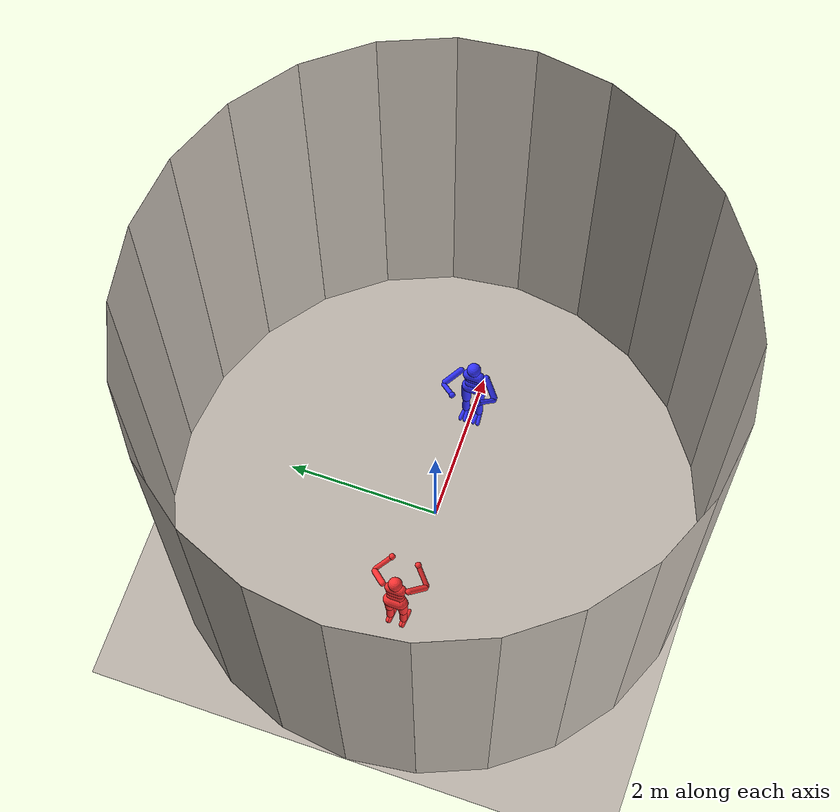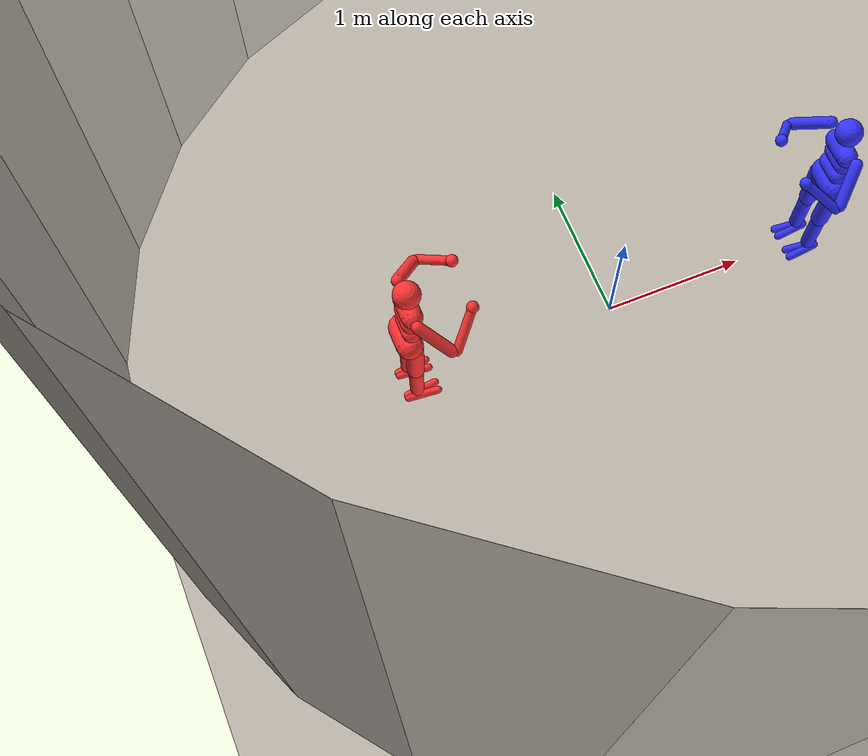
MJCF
<?xml version='1.0' encoding='utf-8'?>
<mujoco model="Laddermoon_Arena_Circular">
    <default><motor ctrlrange="-1 1" ctrllimited="true" />
    <default class="body_a">

      <geom type="capsule" condim="3" friction="0.7 0.005 0.0001" solimp="0.9 0.95 0.002" solref="0.015 1" priority="1" material="body_a" group="1" rgba="1 0.2 0.2 1" />
      <default class="thigh_a">
        <geom size=".06" rgba="1 0.2 0.2 1" />
      </default>
      <default class="shin_a">
        <geom fromto="0 0 0 0 0 -.3" size=".049" rgba="1 0.2 0.2 1" />
      </default>
      <default class="foot_a">

        <geom size=".027" condim="3" friction="1.0 0.02 0.001" solimp="0.9 0.95 0.001" solref="0.01 1" priority="2" rgba="1 0.2 0.2 1" />
        <default class="foot1_a">
          <geom fromto="-.07 -.01 0 .14 -.03 0" rgba="1 0.2 0.2 1" />
        </default>
        <default class="foot2_a">
          <geom fromto="-.07 .01 0 .14  .03 0" rgba="1 0.2 0.2 1" />
        </default>
      </default>
      <default class="arm_upper_a">
        <geom size=".04" rgba="1 0.2 0.2 1" />
      </default>
      <default class="arm_lower_a">
        <geom size=".031" condim="3" friction="0.7 0.005 0.0001" solimp="0.9 0.95 0.002" solref="0.015 1" priority="1" rgba="1 0.2 0.2 1" />
      </default>
      <default class="hand_a">
        <geom type="sphere" size=".04" condim="3" friction="0.7 0.005 0.0001" solimp="0.9 0.95 0.002" solref="0.015 1" priority="1" rgba="1 0.2 0.2 1" />
      </default>

      <joint type="hinge" damping=".2" stiffness="1" armature=".01" limited="true" solimplimit="0 .99 .01" />
      <default class="joint_big_a">
        <joint damping="5" stiffness="10" />
        <default class="hip_x_a">
          <joint range="-30 10" />
        </default>
        <default class="hip_z_a">
          <joint range="-60 35" />
        </default>
        <default class="hip_y_a">
          <joint axis="0 1 0" range="-150 20" />
        </default>
        <default class="joint_big_stiff_a">
          <joint stiffness="20" />
        </default>
      </default>
      <default class="knee_a">
        <joint pos="0 0 .02" axis="0 -1 0" range="-160 2" />
      </default>
      <default class="ankle_a">
        <joint range="-50 50" />
        <default class="ankle_y_a">
          <joint pos="0 0 .08" axis="0 1 0" stiffness="6" />
        </default>
        <default class="ankle_x_a">
          <joint pos="0 0 .04" stiffness="3" />
        </default>
      </default>
      <default class="shoulder_a">
        <joint range="-85 60" />
      </default>
      <default class="elbow_a">
        <joint range="-100 50" stiffness="0" />
      </default>
    </default>
  <default class="body_b">

      <geom type="capsule" condim="3" friction="0.7 0.005 0.0001" solimp="0.9 0.95 0.002" solref="0.015 1" priority="1" material="body_b" group="1" rgba="0.2 0.2 1 1" />
      <default class="thigh_b">
        <geom size=".06" rgba="0.2 0.2 1 1" />
      </default>
      <default class="shin_b">
        <geom fromto="0 0 0 0 0 -.3" size=".049" rgba="0.2 0.2 1 1" />
      </default>
      <default class="foot_b">

        <geom size=".027" condim="3" friction="1.0 0.02 0.001" solimp="0.9 0.95 0.001" solref="0.01 1" priority="2" rgba="0.2 0.2 1 1" />
        <default class="foot1_b">
          <geom fromto="-.07 -.01 0 .14 -.03 0" rgba="0.2 0.2 1 1" />
        </default>
        <default class="foot2_b">
          <geom fromto="-.07 .01 0 .14  .03 0" rgba="0.2 0.2 1 1" />
        </default>
      </default>
      <default class="arm_upper_b">
        <geom size=".04" rgba="0.2 0.2 1 1" />
      </default>
      <default class="arm_lower_b">
        <geom size=".031" condim="3" friction="0.7 0.005 0.0001" solimp="0.9 0.95 0.002" solref="0.015 1" priority="1" rgba="0.2 0.2 1 1" />
      </default>
      <default class="hand_b">
        <geom type="sphere" size=".04" condim="3" friction="0.7 0.005 0.0001" solimp="0.9 0.95 0.002" solref="0.015 1" priority="1" rgba="0.2 0.2 1 1" />
      </default>

      <joint type="hinge" damping=".2" stiffness="1" armature=".01" limited="true" solimplimit="0 .99 .01" />
      <default class="joint_big_b">
        <joint damping="5" stiffness="10" />
        <default class="hip_x_b">
          <joint range="-30 10" />
        </default>
        <default class="hip_z_b">
          <joint range="-60 35" />
        </default>
        <default class="hip_y_b">
          <joint axis="0 1 0" range="-150 20" />
        </default>
        <default class="joint_big_stiff_b">
          <joint stiffness="20" />
        </default>
      </default>
      <default class="knee_b">
        <joint pos="0 0 .02" axis="0 -1 0" range="-160 2" />
      </default>
      <default class="ankle_b">
        <joint range="-50 50" />
        <default class="ankle_y_b">
          <joint pos="0 0 .08" axis="0 1 0" stiffness="6" />
        </default>
        <default class="ankle_x_b">
          <joint pos="0 0 .04" stiffness="3" />
        </default>
      </default>
      <default class="shoulder_b">
        <joint range="-85 60" />
      </default>
      <default class="elbow_b">
        <joint range="-100 50" stiffness="0" />
      </default>
    </default>
  </default><contact><exclude body1="waist_lower_a" body2="thigh_right_a" />
    <exclude body1="waist_lower_a" body2="thigh_left_a" />
  <exclude body1="waist_lower_b" body2="thigh_right_b" />
    <exclude body1="waist_lower_b" body2="thigh_left_b" />
  </contact><tendon><fixed name="hamstring_right_a" limited="true" range="-0.3 2">
      <joint joint="hip_y_right_a" coef=".5" />
      <joint joint="knee_right_a" coef="-.5" />
    </fixed>
    <fixed name="hamstring_left_a" limited="true" range="-0.3 2">
      <joint joint="hip_y_left_a" coef=".5" />
      <joint joint="knee_left_a" coef="-.5" />
    </fixed>
  <fixed name="hamstring_right_b" limited="true" range="-0.3 2">
      <joint joint="hip_y_right_b" coef=".5" />
      <joint joint="knee_right_b" coef="-.5" />
    </fixed>
    <fixed name="hamstring_left_b" limited="true" range="-0.3 2">
      <joint joint="hip_y_left_b" coef=".5" />
      <joint joint="knee_left_b" coef="-.5" />
    </fixed>
  </tendon><actuator><motor name="abdomen_z_a" gear="40" joint="abdomen_z_a" />
    <motor name="abdomen_y_a" gear="40" joint="abdomen_y_a" />
    <motor name="abdomen_x_a" gear="40" joint="abdomen_x_a" />
    <motor name="hip_x_right_a" gear="40" joint="hip_x_right_a" />
    <motor name="hip_z_right_a" gear="40" joint="hip_z_right_a" />
    <motor name="hip_y_right_a" gear="120" joint="hip_y_right_a" />
    <motor name="knee_right_a" gear="80" joint="knee_right_a" />
    <motor name="ankle_y_right_a" gear="20" joint="ankle_y_right_a" />
    <motor name="ankle_x_right_a" gear="20" joint="ankle_x_right_a" />
    <motor name="hip_x_left_a" gear="40" joint="hip_x_left_a" />
    <motor name="hip_z_left_a" gear="40" joint="hip_z_left_a" />
    <motor name="hip_y_left_a" gear="120" joint="hip_y_left_a" />
    <motor name="knee_left_a" gear="80" joint="knee_left_a" />
    <motor name="ankle_y_left_a" gear="20" joint="ankle_y_left_a" />
    <motor name="ankle_x_left_a" gear="20" joint="ankle_x_left_a" />
    <motor name="shoulder1_right_a" gear="20" joint="shoulder1_right_a" />
    <motor name="shoulder2_right_a" gear="20" joint="shoulder2_right_a" />
    <motor name="elbow_right_a" gear="40" joint="elbow_right_a" />
    <motor name="shoulder1_left_a" gear="20" joint="shoulder1_left_a" />
    <motor name="shoulder2_left_a" gear="20" joint="shoulder2_left_a" />
    <motor name="elbow_left_a" gear="40" joint="elbow_left_a" />
  <motor name="abdomen_z_b" gear="40" joint="abdomen_z_b" />
    <motor name="abdomen_y_b" gear="40" joint="abdomen_y_b" />
    <motor name="abdomen_x_b" gear="40" joint="abdomen_x_b" />
    <motor name="hip_x_right_b" gear="40" joint="hip_x_right_b" />
    <motor name="hip_z_right_b" gear="40" joint="hip_z_right_b" />
    <motor name="hip_y_right_b" gear="120" joint="hip_y_right_b" />
    <motor name="knee_right_b" gear="80" joint="knee_right_b" />
    <motor name="ankle_y_right_b" gear="20" joint="ankle_y_right_b" />
    <motor name="ankle_x_right_b" gear="20" joint="ankle_x_right_b" />
    <motor name="hip_x_left_b" gear="40" joint="hip_x_left_b" />
    <motor name="hip_z_left_b" gear="40" joint="hip_z_left_b" />
    <motor name="hip_y_left_b" gear="120" joint="hip_y_left_b" />
    <motor name="knee_left_b" gear="80" joint="knee_left_b" />
    <motor name="ankle_y_left_b" gear="20" joint="ankle_y_left_b" />
    <motor name="ankle_x_left_b" gear="20" joint="ankle_x_left_b" />
    <motor name="shoulder1_right_b" gear="20" joint="shoulder1_right_b" />
    <motor name="shoulder2_right_b" gear="20" joint="shoulder2_right_b" />
    <motor name="elbow_right_b" gear="40" joint="elbow_right_b" />
    <motor name="shoulder1_left_b" gear="20" joint="shoulder1_left_b" />
    <motor name="shoulder2_left_b" gear="20" joint="shoulder2_left_b" />
    <motor name="elbow_left_b" gear="40" joint="elbow_left_b" />
  </actuator><option timestep="0.002" impratio="10" />
    <visual>
        <global offwidth="1920" offheight="1080" />
        <headlight ambient="0.4 0.4 0.4" diffuse="0.4 0.4 0.4" />
    </visual>
    <asset>
        <texture name="tex_floor" type="2d" file="textures/floor_circular.png" />
        <material name="mat_floor" texture="tex_floor" texrepeat="1 1" texuniform="false" emission="1" shininess="0" specular="0" />
        <texture name="tex_ceiling" type="2d" file="textures/ceiling.png" />
        <material name="mat_ceiling" texture="tex_ceiling" texrepeat="1 1" texuniform="false" emission="1" shininess="0" specular="0" />
        <texture name="tex_wall_0" type="2d" file="textures/wall_0.png" />
        <material name="mat_wall_0" texture="tex_wall_0" texrepeat="1 1" texuniform="false" emission="1" shininess="0" specular="0" />
        <texture name="tex_wall_1" type="2d" file="textures/wall_1.png" />
        <material name="mat_wall_1" texture="tex_wall_1" texrepeat="1 1" texuniform="false" emission="1" shininess="0" specular="0" />
        <texture name="tex_wall_2" type="2d" file="textures/wall_2.png" />
        <material name="mat_wall_2" texture="tex_wall_2" texrepeat="1 1" texuniform="false" emission="1" shininess="0" specular="0" />
        <texture name="tex_wall_3" type="2d" file="textures/wall_3.png" />
        <material name="mat_wall_3" texture="tex_wall_3" texrepeat="1 1" texuniform="false" emission="1" shininess="0" specular="0" />
        <texture name="tex_wall_4" type="2d" file="textures/wall_4.png" />
        <material name="mat_wall_4" texture="tex_wall_4" texrepeat="1 1" texuniform="false" emission="1" shininess="0" specular="0" />
        <texture name="tex_wall_5" type="2d" file="textures/wall_5.png" />
        <material name="mat_wall_5" texture="tex_wall_5" texrepeat="1 1" texuniform="false" emission="1" shininess="0" specular="0" />
    <texture type="skybox" builtin="gradient" rgb1=".3 .5 .7" rgb2="0 0 0" width="32" height="512" />
    <texture name="body_a" type="cube" builtin="flat" mark="cross" width="128" height="128" rgb1="0.8 0.6 0.4" rgb2="0.8 0.6 0.4" markrgb="1 1 1" />
    <material name="body_a" texture="body_a" texuniform="true" rgba="1 0.2 0.2 1" />
    <texture name="grid_a" type="2d" builtin="checker" width="512" height="512" rgb1=".1 .2 .3" rgb2=".2 .3 .4" />
    <material name="grid_a" texture="grid_a" texrepeat="1 1" texuniform="true" reflectance=".2" rgba="1 0.2 0.2 1" />
  <texture type="skybox" builtin="gradient" rgb1=".3 .5 .7" rgb2="0 0 0" width="32" height="512" />
    <texture name="body_b" type="cube" builtin="flat" mark="cross" width="128" height="128" rgb1="0.8 0.6 0.4" rgb2="0.8 0.6 0.4" markrgb="1 1 1" />
    <material name="body_b" texture="body_b" texuniform="true" rgba="0.2 0.2 1 1" />
    <texture name="grid_b" type="2d" builtin="checker" width="512" height="512" rgb1=".1 .2 .3" rgb2=".2 .3 .4" />
    <material name="grid_b" texture="grid_b" texrepeat="1 1" texuniform="true" reflectance=".2" rgba="0.2 0.2 1 1" />
  </asset>
    <worldbody>
        <camera name="cam_diag_0" pos="2.2203 2.2203 4.0000" xyaxes="-0.7071 0.7071 0.0000 -0.4404 -0.4404 0.7823" />
        <camera name="cam_diag_1" pos="-2.2203 2.2203 4.0000" xyaxes="-0.7071 -0.7071 0.0000 0.4404 -0.4404 0.7823" />
        <camera name="cam_diag_2" pos="-2.2203 -2.2203 4.0000" xyaxes="0.7071 -0.7071 0.0000 0.4404 0.4404 0.7823" />
        <camera name="cam_diag_3" pos="2.2203 -2.2203 4.0000" xyaxes="0.7071 0.7071 -0.0000 -0.4404 0.4404 0.7823" />
        <camera name="cam_east" pos="3.1400 0.0000 3.0000" xyaxes="0.0000 1.0000 -0.0000 -0.4310 0.0000 0.9023" />
        <camera name="cam_south" pos="0.0000 3.1400 3.0000" xyaxes="-1.0000 0.0000 0.0000 -0.0000 -0.4310 0.9023" />
        <camera name="cam_west" pos="-3.1400 0.0000 3.0000" xyaxes="-0.0000 -1.0000 0.0000 0.4310 -0.0000 0.9023" />
        <camera name="cam_north" pos="-0.0000 -3.1400 3.0000" xyaxes="1.0000 -0.0000 0.0000 0.0000 0.4310 0.9023" />
        <camera name="ceilingcamera" pos="0.0000 0.0000 6.0000" xyaxes="1.0000 0.0000 0.0000 -0.0000 1.0000 0.0000" />
        <geom name="ground" type="plane" pos="0.0 0.0 0.0" size="3.44 3.44 0.1" xyaxes="1.0000 0.0000 0.0000 0.0000 1.0000 0.0000" condim="3" friction="1.0 0.005 0.0001" solref="0.02 1" solimp="0.9 0.95 0.001" material="mat_floor" />
        <geom name="ceiling" type="plane" pos="0.0 0.0 6.10" size="3.44 3.44 0.1" xyaxes="-1.0000 0.0000 0.0000 0.0000 1.0000 0.0000" condim="3" friction="1.0 0.005 0.0001" solref="0.02 1" solimp="0.9 0.95 0.001" material="mat_ceiling" />
        <geom name="wall_00" type="plane" pos="3.3814 0.4452 3.0500" size="0.4490 3.0500 0.1" xyaxes="0.1305 -0.9914 0.0000 0.0000 0.0000 1.0000" condim="3" friction="0.3 0.005 0.0001" solref="0.02 1" solimp="0.9 0.95 0.001" material="mat_wall_2" />
        <geom name="wall_01" type="plane" pos="3.1510 1.3052 3.0500" size="0.4490 3.0500 0.1" xyaxes="0.3827 -0.9239 0.0000 0.0000 0.0000 1.0000" condim="3" friction="0.3 0.005 0.0001" solref="0.02 1" solimp="0.9 0.95 0.001" material="mat_wall_1" />
        <geom name="wall_02" type="plane" pos="2.7058 2.0762 3.0500" size="0.4490 3.0500 0.1" xyaxes="0.6088 -0.7934 0.0000 0.0000 0.0000 1.0000" condim="3" friction="0.3 0.005 0.0001" solref="0.02 1" solimp="0.9 0.95 0.001" material="mat_wall_0" />
        <geom name="wall_03" type="plane" pos="2.0762 2.7058 3.0500" size="0.4490 3.0500 0.1" xyaxes="0.7934 -0.6088 0.0000 0.0000 0.0000 1.0000" condim="3" friction="0.3 0.005 0.0001" solref="0.02 1" solimp="0.9 0.95 0.001" material="mat_wall_5" />
        <geom name="wall_04" type="plane" pos="1.3052 3.1510 3.0500" size="0.4490 3.0500 0.1" xyaxes="0.9239 -0.3827 0.0000 0.0000 0.0000 1.0000" condim="3" friction="0.3 0.005 0.0001" solref="0.02 1" solimp="0.9 0.95 0.001" material="mat_wall_4" />
        <geom name="wall_05" type="plane" pos="0.4452 3.3814 3.0500" size="0.4490 3.0500 0.1" xyaxes="0.9914 -0.1305 0.0000 0.0000 0.0000 1.0000" condim="3" friction="0.3 0.005 0.0001" solref="0.02 1" solimp="0.9 0.95 0.001" material="mat_wall_3" />
        <geom name="wall_06" type="plane" pos="-0.4452 3.3814 3.0500" size="0.4490 3.0500 0.1" xyaxes="0.9914 0.1305 0.0000 0.0000 0.0000 1.0000" condim="3" friction="0.3 0.005 0.0001" solref="0.02 1" solimp="0.9 0.95 0.001" material="mat_wall_2" />
        <geom name="wall_07" type="plane" pos="-1.3052 3.1510 3.0500" size="0.4490 3.0500 0.1" xyaxes="0.9239 0.3827 0.0000 0.0000 0.0000 1.0000" condim="3" friction="0.3 0.005 0.0001" solref="0.02 1" solimp="0.9 0.95 0.001" material="mat_wall_1" />
        <geom name="wall_08" type="plane" pos="-2.0762 2.7058 3.0500" size="0.4490 3.0500 0.1" xyaxes="0.7934 0.6088 0.0000 0.0000 0.0000 1.0000" condim="3" friction="0.3 0.005 0.0001" solref="0.02 1" solimp="0.9 0.95 0.001" material="mat_wall_0" />
        <geom name="wall_09" type="plane" pos="-2.7058 2.0762 3.0500" size="0.4490 3.0500 0.1" xyaxes="0.6088 0.7934 0.0000 0.0000 0.0000 1.0000" condim="3" friction="0.3 0.005 0.0001" solref="0.02 1" solimp="0.9 0.95 0.001" material="mat_wall_5" />
        <geom name="wall_10" type="plane" pos="-3.1510 1.3052 3.0500" size="0.4490 3.0500 0.1" xyaxes="0.3827 0.9239 0.0000 0.0000 0.0000 1.0000" condim="3" friction="0.3 0.005 0.0001" solref="0.02 1" solimp="0.9 0.95 0.001" material="mat_wall_4" />
        <geom name="wall_11" type="plane" pos="-3.3814 0.4452 3.0500" size="0.4490 3.0500 0.1" xyaxes="0.1305 0.9914 0.0000 0.0000 0.0000 1.0000" condim="3" friction="0.3 0.005 0.0001" solref="0.02 1" solimp="0.9 0.95 0.001" material="mat_wall_3" />
        <geom name="wall_12" type="plane" pos="-3.3814 -0.4452 3.0500" size="0.4490 3.0500 0.1" xyaxes="-0.1305 0.9914 0.0000 0.0000 0.0000 1.0000" condim="3" friction="0.3 0.005 0.0001" solref="0.02 1" solimp="0.9 0.95 0.001" material="mat_wall_2" />
        <geom name="wall_13" type="plane" pos="-3.1510 -1.3052 3.0500" size="0.4490 3.0500 0.1" xyaxes="-0.3827 0.9239 0.0000 0.0000 0.0000 1.0000" condim="3" friction="0.3 0.005 0.0001" solref="0.02 1" solimp="0.9 0.95 0.001" material="mat_wall_1" />
        <geom name="wall_14" type="plane" pos="-2.7058 -2.0762 3.0500" size="0.4490 3.0500 0.1" xyaxes="-0.6088 0.7934 0.0000 0.0000 0.0000 1.0000" condim="3" friction="0.3 0.005 0.0001" solref="0.02 1" solimp="0.9 0.95 0.001" material="mat_wall_0" />
        <geom name="wall_15" type="plane" pos="-2.0762 -2.7058 3.0500" size="0.4490 3.0500 0.1" xyaxes="-0.7934 0.6088 0.0000 0.0000 0.0000 1.0000" condim="3" friction="0.3 0.005 0.0001" solref="0.02 1" solimp="0.9 0.95 0.001" material="mat_wall_5" />
        <geom name="wall_16" type="plane" pos="-1.3052 -3.1510 3.0500" size="0.4490 3.0500 0.1" xyaxes="-0.9239 0.3827 0.0000 0.0000 0.0000 1.0000" condim="3" friction="0.3 0.005 0.0001" solref="0.02 1" solimp="0.9 0.95 0.001" material="mat_wall_4" />
        <geom name="wall_17" type="plane" pos="-0.4452 -3.3814 3.0500" size="0.4490 3.0500 0.1" xyaxes="-0.9914 0.1305 0.0000 0.0000 0.0000 1.0000" condim="3" friction="0.3 0.005 0.0001" solref="0.02 1" solimp="0.9 0.95 0.001" material="mat_wall_3" />
        <geom name="wall_18" type="plane" pos="0.4452 -3.3814 3.0500" size="0.4490 3.0500 0.1" xyaxes="-0.9914 -0.1305 0.0000 0.0000 0.0000 1.0000" condim="3" friction="0.3 0.005 0.0001" solref="0.02 1" solimp="0.9 0.95 0.001" material="mat_wall_2" />
        <geom name="wall_19" type="plane" pos="1.3052 -3.1510 3.0500" size="0.4490 3.0500 0.1" xyaxes="-0.9239 -0.3827 0.0000 0.0000 0.0000 1.0000" condim="3" friction="0.3 0.005 0.0001" solref="0.02 1" solimp="0.9 0.95 0.001" material="mat_wall_1" />
        <geom name="wall_20" type="plane" pos="2.0762 -2.7058 3.0500" size="0.4490 3.0500 0.1" xyaxes="-0.7934 -0.6088 0.0000 0.0000 0.0000 1.0000" condim="3" friction="0.3 0.005 0.0001" solref="0.02 1" solimp="0.9 0.95 0.001" material="mat_wall_0" />
        <geom name="wall_21" type="plane" pos="2.7058 -2.0762 3.0500" size="0.4490 3.0500 0.1" xyaxes="-0.6088 -0.7934 0.0000 0.0000 0.0000 1.0000" condim="3" friction="0.3 0.005 0.0001" solref="0.02 1" solimp="0.9 0.95 0.001" material="mat_wall_5" />
        <geom name="wall_22" type="plane" pos="3.1510 -1.3052 3.0500" size="0.4490 3.0500 0.1" xyaxes="-0.3827 -0.9239 0.0000 0.0000 0.0000 1.0000" condim="3" friction="0.3 0.005 0.0001" solref="0.02 1" solimp="0.9 0.95 0.001" material="mat_wall_4" />
        <geom name="wall_23" type="plane" pos="3.3814 -0.4452 3.0500" size="0.4490 3.0500 0.1" xyaxes="-0.1305 -0.9914 0.0000 0.0000 0.0000 1.0000" condim="3" friction="0.3 0.005 0.0001" solref="0.02 1" solimp="0.9 0.95 0.001" material="mat_wall_3" />
    <body name="torso_a" pos="-1.5 0 1.282" childclass="body_a" euler="0 0 0.0">
      <camera name="back_a" pos="-3 0 1" xyaxes="0 -1 0 1 0 2" mode="trackcom" />
      <camera name="side_a" pos="0 -3 1" xyaxes="1 0 0 0 1 2" mode="trackcom" />
      <freejoint name="root_a" />
      <geom name="torso_a" fromto="0 -.07 0 0 .07 0" size=".07" rgba="1 0.2 0.2 1" />
      <geom name="waist_upper_a" fromto="-.01 -.06 -.12 -.01 .06 -.12" size=".06" rgba="1 0.2 0.2 1" />
      <body name="head_a" pos="0 0 .19">
        <geom name="head_a" type="sphere" size=".09" rgba="1 0.2 0.2 1" />
        <camera name="egocentric_a" pos=".09 0 0" xyaxes="0 -1 0 .1 0 1" fovy="80" />
      </body>
      <body name="waist_lower_a" pos="-.01 0 -.26">
        <geom name="waist_lower_a" fromto="0 -.06 0 0 .06 0" size=".06" rgba="1 0.2 0.2 1" />
        <joint name="abdomen_z_a" pos="0 0 .065" axis="0 0 1" range="-45 45" class="joint_big_stiff_a" />
        <joint name="abdomen_y_a" pos="0 0 .065" axis="0 1 0" range="-75 30" class="joint_big_a" />
        <body name="pelvis_a" pos="0 0 -.165">
          <joint name="abdomen_x_a" pos="0 0 .1" axis="1 0 0" range="-35 35" class="joint_big_a" />
          <geom name="butt_a" fromto="-.02 -.07 0 -.02 .07 0" size=".09" rgba="1 0.2 0.2 1" />
          <body name="thigh_right_a" pos="0 -.1 -.04">
            <joint name="hip_x_right_a" axis="1 0 0" class="hip_x_a" />
            <joint name="hip_z_right_a" axis="0 0 1" class="hip_z_a" />
            <joint name="hip_y_right_a" class="hip_y_a" />
            <geom name="thigh_right_a" fromto="0 0 0 0 .01 -.34" class="thigh_a" rgba="1 0.2 0.2 1" />
            <body name="shin_right_a" pos="0 .01 -.4">
              <joint name="knee_right_a" class="knee_a" />
              <geom name="shin_right_a" class="shin_a" rgba="1 0.2 0.2 1" />
              <body name="foot_right_a" pos="0 0 -.39">
                <joint name="ankle_y_right_a" class="ankle_y_a" />
                <joint name="ankle_x_right_a" class="ankle_x_a" axis="1 0 .5" />
                <geom name="foot1_right_a" class="foot1_a" rgba="1 0.2 0.2 1" />
                <geom name="foot2_right_a" class="foot2_a" rgba="1 0.2 0.2 1" />
              </body>
            </body>
          </body>
          <body name="thigh_left_a" pos="0 .1 -.04">
            <joint name="hip_x_left_a" axis="-1 0 0" class="hip_x_a" />
            <joint name="hip_z_left_a" axis="0 0 -1" class="hip_z_a" />
            <joint name="hip_y_left_a" class="hip_y_a" />
            <geom name="thigh_left_a" fromto="0 0 0 0 -.01 -.34" class="thigh_a" rgba="1 0.2 0.2 1" />
            <body name="shin_left_a" pos="0 -.01 -.4">
              <joint name="knee_left_a" class="knee_a" />
              <geom name="shin_left_a" fromto="0 0 0 0 0 -.3" class="shin_a" rgba="1 0.2 0.2 1" />
              <body name="foot_left_a" pos="0 0 -.39">
                <joint name="ankle_y_left_a" class="ankle_y_a" />
                <joint name="ankle_x_left_a" class="ankle_x_a" axis="-1 0 -.5" />
                <geom name="foot1_left_a" class="foot1_a" rgba="1 0.2 0.2 1" />
                <geom name="foot2_left_a" class="foot2_a" rgba="1 0.2 0.2 1" />
              </body>
            </body>
          </body>
        </body>
      </body>
      <body name="upper_arm_right_a" pos="0 -.17 .06">
        <joint name="shoulder1_right_a" axis="2 1 1" class="shoulder_a" />
        <joint name="shoulder2_right_a" axis="0 -1 1" class="shoulder_a" />
        <geom name="upper_arm_right_a" fromto="0 0 0 .16 -.16 -.16" class="arm_upper_a" rgba="1 0.2 0.2 1" />
        <body name="lower_arm_right_a" pos=".18 -.18 -.18">
          <joint name="elbow_right_a" axis="0 -1 1" class="elbow_a" />
          <geom name="lower_arm_right_a" fromto=".01 .01 .01 .17 .17 .17" class="arm_lower_a" rgba="1 0.2 0.2 1" />
          <body name="hand_right_a" pos=".18 .18 .18">
            <geom name="hand_right_a" zaxis="1 1 1" class="hand_a" rgba="1 0.2 0.2 1" />
          </body>
        </body>
      </body>
      <body name="upper_arm_left_a" pos="0 .17 .06">
        <joint name="shoulder1_left_a" axis="-2 1 -1" class="shoulder_a" />
        <joint name="shoulder2_left_a" axis="0 -1 -1" class="shoulder_a" />
        <geom name="upper_arm_left_a" fromto="0 0 0 .16 .16 -.16" class="arm_upper_a" rgba="1 0.2 0.2 1" />
        <body name="lower_arm_left_a" pos=".18 .18 -.18">
          <joint name="elbow_left_a" axis="0 -1 -1" class="elbow_a" />
          <geom name="lower_arm_left_a" fromto=".01 -.01 .01 .17 -.17 .17" class="arm_lower_a" rgba="1 0.2 0.2 1" />
          <body name="hand_left_a" pos=".18 -.18 .18">
            <geom name="hand_left_a" zaxis="1 -1 1" class="hand_a" rgba="1 0.2 0.2 1" />
          </body>
        </body>
      </body>
    </body>
  <body name="torso_b" pos="1.5 0 1.282" childclass="body_b" euler="0 0 180.0">
      <camera name="back_b" pos="-3 0 1" xyaxes="0 -1 0 1 0 2" mode="trackcom" />
      <camera name="side_b" pos="0 -3 1" xyaxes="1 0 0 0 1 2" mode="trackcom" />
      <freejoint name="root_b" />
      <geom name="torso_b" fromto="0 -.07 0 0 .07 0" size=".07" rgba="0.2 0.2 1 1" />
      <geom name="waist_upper_b" fromto="-.01 -.06 -.12 -.01 .06 -.12" size=".06" rgba="0.2 0.2 1 1" />
      <body name="head_b" pos="0 0 .19">
        <geom name="head_b" type="sphere" size=".09" rgba="0.2 0.2 1 1" />
        <camera name="egocentric_b" pos=".09 0 0" xyaxes="0 -1 0 .1 0 1" fovy="80" />
      </body>
      <body name="waist_lower_b" pos="-.01 0 -.26">
        <geom name="waist_lower_b" fromto="0 -.06 0 0 .06 0" size=".06" rgba="0.2 0.2 1 1" />
        <joint name="abdomen_z_b" pos="0 0 .065" axis="0 0 1" range="-45 45" class="joint_big_stiff_b" />
        <joint name="abdomen_y_b" pos="0 0 .065" axis="0 1 0" range="-75 30" class="joint_big_b" />
        <body name="pelvis_b" pos="0 0 -.165">
          <joint name="abdomen_x_b" pos="0 0 .1" axis="1 0 0" range="-35 35" class="joint_big_b" />
          <geom name="butt_b" fromto="-.02 -.07 0 -.02 .07 0" size=".09" rgba="0.2 0.2 1 1" />
          <body name="thigh_right_b" pos="0 -.1 -.04">
            <joint name="hip_x_right_b" axis="1 0 0" class="hip_x_b" />
            <joint name="hip_z_right_b" axis="0 0 1" class="hip_z_b" />
            <joint name="hip_y_right_b" class="hip_y_b" />
            <geom name="thigh_right_b" fromto="0 0 0 0 .01 -.34" class="thigh_b" rgba="0.2 0.2 1 1" />
            <body name="shin_right_b" pos="0 .01 -.4">
              <joint name="knee_right_b" class="knee_b" />
              <geom name="shin_right_b" class="shin_b" rgba="0.2 0.2 1 1" />
              <body name="foot_right_b" pos="0 0 -.39">
                <joint name="ankle_y_right_b" class="ankle_y_b" />
                <joint name="ankle_x_right_b" class="ankle_x_b" axis="1 0 .5" />
                <geom name="foot1_right_b" class="foot1_b" rgba="0.2 0.2 1 1" />
                <geom name="foot2_right_b" class="foot2_b" rgba="0.2 0.2 1 1" />
              </body>
            </body>
          </body>
          <body name="thigh_left_b" pos="0 .1 -.04">
            <joint name="hip_x_left_b" axis="-1 0 0" class="hip_x_b" />
            <joint name="hip_z_left_b" axis="0 0 -1" class="hip_z_b" />
            <joint name="hip_y_left_b" class="hip_y_b" />
            <geom name="thigh_left_b" fromto="0 0 0 0 -.01 -.34" class="thigh_b" rgba="0.2 0.2 1 1" />
            <body name="shin_left_b" pos="0 -.01 -.4">
              <joint name="knee_left_b" class="knee_b" />
              <geom name="shin_left_b" fromto="0 0 0 0 0 -.3" class="shin_b" rgba="0.2 0.2 1 1" />
              <body name="foot_left_b" pos="0 0 -.39">
                <joint name="ankle_y_left_b" class="ankle_y_b" />
                <joint name="ankle_x_left_b" class="ankle_x_b" axis="-1 0 -.5" />
                <geom name="foot1_left_b" class="foot1_b" rgba="0.2 0.2 1 1" />
                <geom name="foot2_left_b" class="foot2_b" rgba="0.2 0.2 1 1" />
              </body>
            </body>
          </body>
        </body>
      </body>
      <body name="upper_arm_right_b" pos="0 -.17 .06">
        <joint name="shoulder1_right_b" axis="2 1 1" class="shoulder_b" />
        <joint name="shoulder2_right_b" axis="0 -1 1" class="shoulder_b" />
        <geom name="upper_arm_right_b" fromto="0 0 0 .16 -.16 -.16" class="arm_upper_b" rgba="0.2 0.2 1 1" />
        <body name="lower_arm_right_b" pos=".18 -.18 -.18">
          <joint name="elbow_right_b" axis="0 -1 1" class="elbow_b" />
          <geom name="lower_arm_right_b" fromto=".01 .01 .01 .17 .17 .17" class="arm_lower_b" rgba="0.2 0.2 1 1" />
          <body name="hand_right_b" pos=".18 .18 .18">
            <geom name="hand_right_b" zaxis="1 1 1" class="hand_b" rgba="0.2 0.2 1 1" />
          </body>
        </body>
      </body>
      <body name="upper_arm_left_b" pos="0 .17 .06">
        <joint name="shoulder1_left_b" axis="-2 1 -1" class="shoulder_b" />
        <joint name="shoulder2_left_b" axis="0 -1 -1" class="shoulder_b" />
        <geom name="upper_arm_left_b" fromto="0 0 0 .16 .16 -.16" class="arm_upper_b" rgba="0.2 0.2 1 1" />
        <body name="lower_arm_left_b" pos=".18 .18 -.18">
          <joint name="elbow_left_b" axis="0 -1 -1" class="elbow_b" />
          <geom name="lower_arm_left_b" fromto=".01 -.01 .01 .17 -.17 .17" class="arm_lower_b" rgba="0.2 0.2 1 1" />
          <body name="hand_left_b" pos=".18 -.18 .18">
            <geom name="hand_left_b" zaxis="1 -1 1" class="hand_b" rgba="0.2 0.2 1 1" />
          </body>
        </body>
      </body>
    </body>
  </worldbody>
</mujoco>
